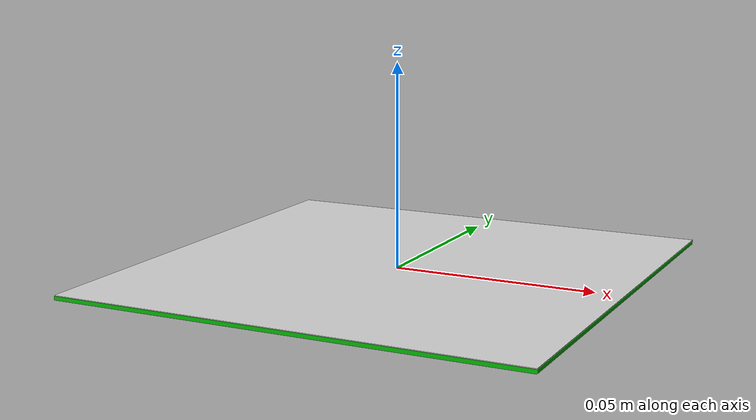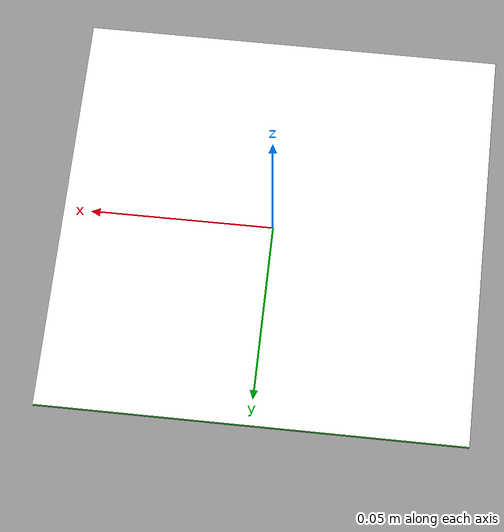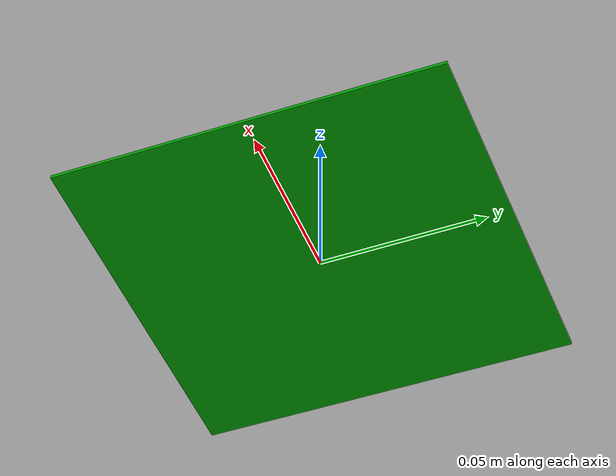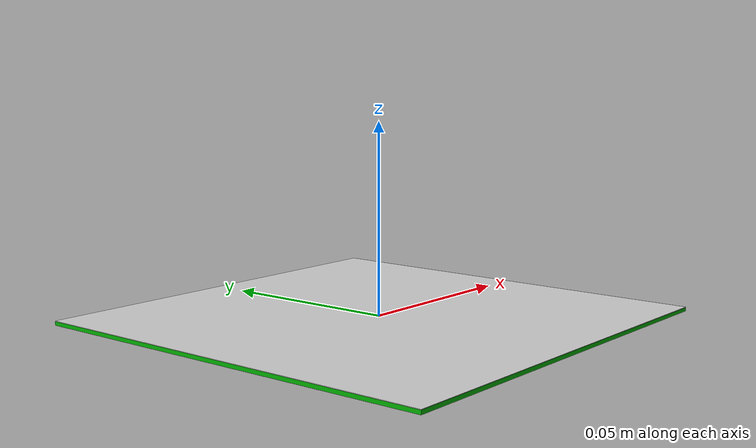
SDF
<?xml version="1.0" ?>
<sdf version="1.6">

  <model name="markerbox2">
    <link name="box2">
      <pose>0 0 0 0 0 0</pose>
      <inertial>
        <inertia>
          <ixx>1</ixx>
          <ixy>0</ixy>
          <ixz>0</ixz>
          <iyy>1</iyy>
          <iyz>0</iyz>
          <izz>1</izz>
        </inertia>
        <mass>1.0</mass>
      </inertial>
      <collision name="box2_collision">
        <geometry>
          <box>
            <size>0.115 0.115 0.001</size>
          </box>
        </geometry>
      </collision>
      <visual name="box2_visual">
        <geometry>
          <box>
            <size>0.115 0.115 0.001</size>
          </box>
        </geometry>
        <material>
          <ambient>0.0 0.1 0.0 1</ambient>
          <diffuse>0.0 0.6 0.0 1</diffuse>
          <specular>0.6 0.8 0.6 1</specular>
        </material>

      </visual>
    </link>

    <joint name="joint_plane2" type="fixed">
      <parent>box2</parent>
      <child>plane2</child>
    </joint>

    <link name="plane2">
      <pose>0 0 0.0005 0 0 0</pose>
      <visual name="plane2_visual">
        <geometry>
          <plane>
            <normal>0 0 1</normal>
            <size>0.115 0.115</size>
          </plane>
        </geometry>
        <material>
          <ambient>1.0 1.0 1.0 1</ambient>
          <diffuse>1.0 1.0 1.0 1</diffuse>
          <specular>1.0 1.0 1.0 1</specular>
        </material>
      </visual>
    </link>

    <joint name="joint_markerbox2" type="fixed">
      <parent>plane2</parent>
      <child>marker2</child>
    </joint>

    <link name="marker2">
      <pose>0 0 0.0006 0 0 0</pose>
      <visual name="marker2_visual">
        <geometry>
          <box>
            <size>0.115 0.115 0.0001</size>
          </box>
        </geometry>
        <material>
          <ambient>1.0 1.0 1.0 1</ambient>
          <diffuse>1.0 1.0 1.0 1</diffuse>
          <specular>0.0 0.0 0.0 1</specular>
          <pbr>
            <metal>
              <albedo_map>textures/4x4_1000-2_115.png</albedo_map>
              <roughness>1.0</roughness>
              <metalness>0.0</metalness>
            </metal>
          </pbr>
        </material>

      </visual>

      <collision name="collision2">
        <geometry>
          <box>
            <size>0.115 0.115 0.0001</size>
          </box>
        </geometry>
      </collision>
    </link>
  </model>

</sdf>
